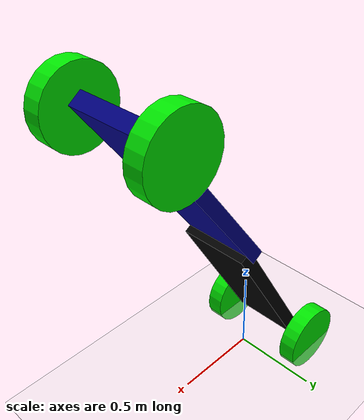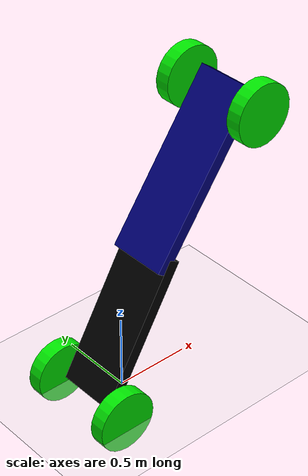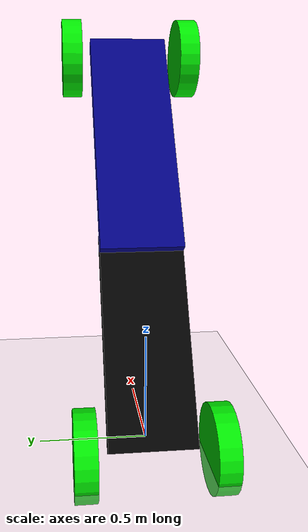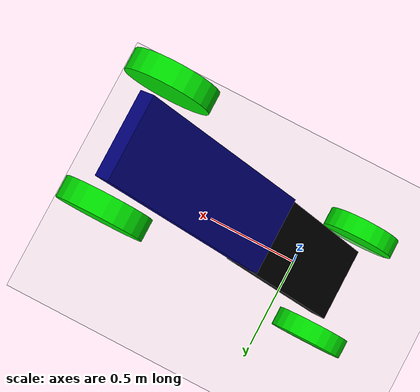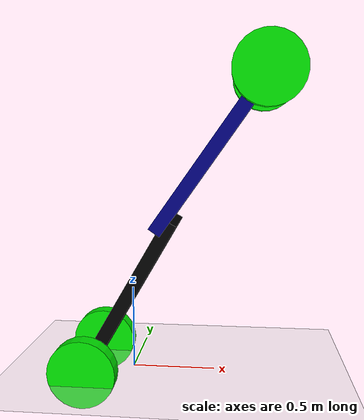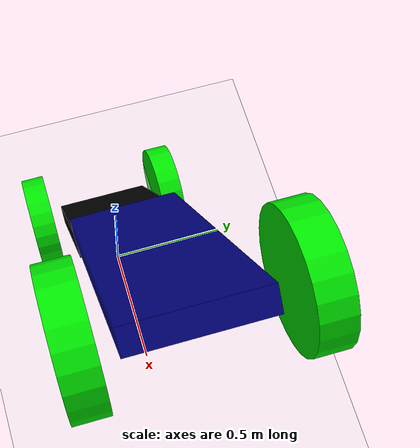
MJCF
<mujoco>
	<option gravity="0 0 -9.81" />
	<worldbody>
        <light diffuse=".5 .5 .5" pos="0 0 3" dir="0 0 -1"/>
		<geom type="plane" size="5 5 0.1" rgba=".9 .9 .9 1"/>
		<body name = "chassis" pos="0 0 0.5" euler='0 30 0'>
        <joint type="free"/>
			<geom type="box" size=".04 .2 .5" rgba="0 0 0 1" mass="3"/>
            <body pos="0 0 1" euler="0 5 0">
            <joint name="pin" type="hinge" axis="0 -1 0" pos="0 0 -0.5"/>
                <geom type="box" size=".04 .2 .6" rgba="0 0 0.5 1" mass="3"/>
                <body name="front-right-tire" pos="0 -0.3 0.5" euler='90 0 0'>
                    <joint name = "front-right-wheel" type="hinge" axis="0 0 -1"/>
                    <geom type="cylinder" size=".2 0.05" rgba="0 .9 0 1"/>
                </body>
                <body name="front-left-tire" pos="0 0.3 0.5" euler='90 0 0'>
                    <joint name = "front-left-wheel" type="hinge" axis="0 0 -1"/>
                    <geom type="cylinder" size=".2 0.05" rgba="0 .9 0 1"/>
                </body>
            </body>
			<body name="left-tire" pos="0 0.3 -0.5" euler='90 0 0'>
				<joint name = "left-wheel" type="hinge" axis="0 0 -1"/>
				<geom type="cylinder" size=".2 0.05" rgba="0 .9 0 1"/>
			</body>
			<body name="right-tire" pos="0 -0.3 -0.5" euler='90 0 0'>
				<joint name = "right-wheel" type="hinge" axis="0 0 -1"/>
				<geom type="cylinder" size=".2 0.05" rgba="0 .9 0 1"/>
			</body>

		</body>
	</worldbody>
	<actuator>
        <velocity name="left-v" joint="left-wheel" kv="100"/>
        <velocity name="right-v" joint="right-wheel" kv="100"/>
        <velocity name="left-f-v" joint="front-left-wheel" kv="100"/>
        <velocity name="right-f-v" joint="front-right-wheel" kv="100"/>
    </actuator>
</mujoco>
